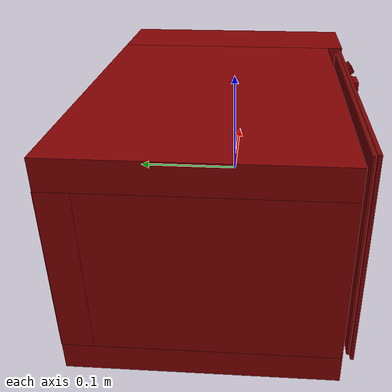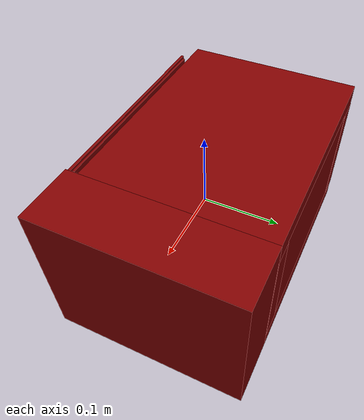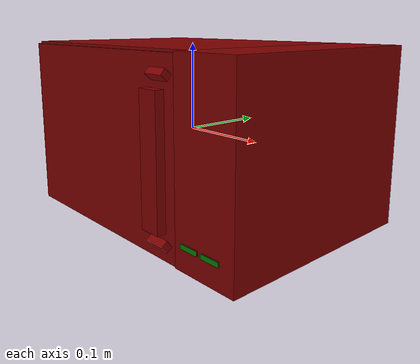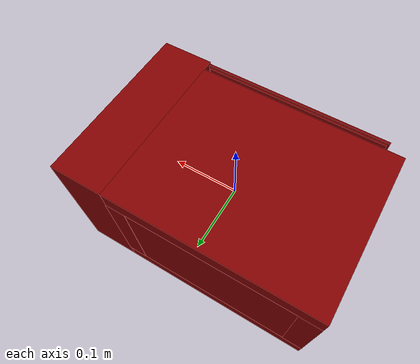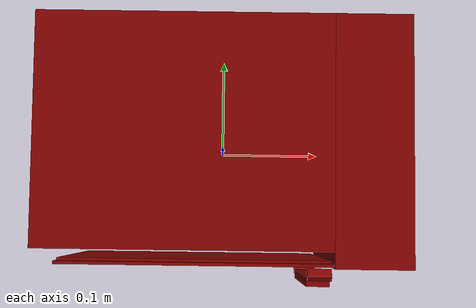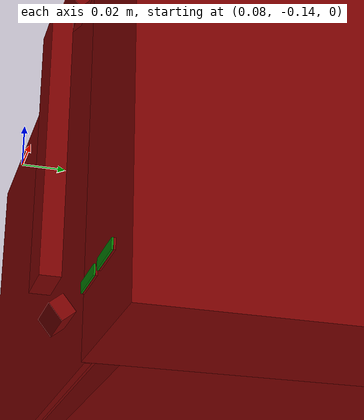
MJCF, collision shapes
<mujoco model="model">
  <compiler angle="radian"/>
  <asset>
    <mesh file="visuals/door.obj" name="door_vis"/>
    <mesh file="visuals/door_Clear.obj" name="door_Clear_vis"/>
    <mesh file="visuals/Body001.obj" name="Body001_vis"/>
    <mesh file="visuals/Button001.obj" name="Button001_vis"/>
    <mesh file="visuals/Button002.obj" name="Button002_vis"/>
    <mesh file="visuals/Disc001.obj" name="Disc001_vis"/>
    <texture file="visuals/T_BC001.png" name="Body001_material" type="2d"/>
    <material name="Body001_material" rgba="1 1 1 1.0" texture="Body001_material" shininess="0.141421377658844" specular="0.3103448502657381"/>
    <texture file="visuals/T_BC001.png" name="door_material" type="2d"/>
    <material name="door_material" rgba="1 1 1 1.0" texture="door_material" shininess="0.141421377658844" specular="0.3103448502657381"/>
    <texture file="visuals/T_BC001.png" name="door_Clear_material" type="2d"/>
    <material name="door_Clear_material" rgba="1 1 1 0.6971428394317627" texture="door_Clear_material" shininess="0.141421377658844" specular="0.3103448502657381"/>
    <texture file="visuals/T_BC001.png" name="Button001_material" type="2d"/>
    <material name="Button001_material" rgba="1 1 1 1.0" texture="Button001_material" shininess="0.141421377658844" specular="0.3103448502657381"/>
    <texture file="visuals/T_BC001.png" name="Button002_material" type="2d"/>
    <material name="Button002_material" rgba="1 1 1 1.0" texture="Button002_material" shininess="0.141421377658844" specular="0.3103448502657381"/>
    <texture file="visuals/T_BC001.png" name="Disc001_material" type="2d"/>
    <material name="Disc001_material" rgba="1 1 1 1.0" texture="Disc001_material" shininess="0.141421377658844" specular="0.3103448502657381"/>
  </asset>
  <default>
    <default class="visual">
      <geom conaffinity="0" contype="0" group="1" type="mesh"/>
    </default>
    <default class="collision">
      <geom group="0" rgba="0.5 0 0 0.5"/>
    </default>
    <default class="spawn">
      <geom group="0" rgba="1 1 1 0.5" contype="0" conaffinity="0"/>
      <site group="0" rgba="1 1 1 0.5"/>
    </default>
    <default class="region">
      <geom group="1" conaffinity="0" contype="0" rgba="0 1 0 0"/>
    </default>
  </default>
  <worldbody>
    <body>
      <body name="object">
        <geom class="collision" type="box" pos="-0.037042 0.002716 -0.062936" size="0.0876477062702179 0.0876477062702179 0.0024081584997475147" quat="1.0 0.0 0.0 0.0" name="tray" rgba="0 1 0 0.5"/>
        <geom class="collision" type="box" pos="0.158836 -0.118766 -0.072661" size="0.011024856939911842 0.00039472829666920006 0.002422338118776679" quat="1.0 0.0 0.0 0.0" name="start_button" rgba="0.0 0.5 0 0.5"/>
        <geom class="collision" type="box" pos="0.131542 -0.118766 -0.072661" size="0.011002318933606148 0.00039472829666920006 0.002422338118776679" quat="1.0 0.0 0.0 0.0" name="stop_button" rgba="0.0 0.5 0 0.5"/>
        <geom mesh="Body001_vis" type="mesh" solimp="0.998 0.998 0.001" solref="0.001 1" density="100" friction="0.95 0.3 0.1" class="visual" material="Body001_material"/>
        <geom class="collision" type="box" pos="0.094624 0.017139 -0.000690" size="0.014875564724206924 0.11611251533031464 0.07368079572916031" quat="1.0 0.0 0.0 0.0"/>
        <geom class="collision" type="box" pos="-0.037826 0.016945 -0.086299" size="0.14693722128868103 0.11591878533363342 0.01365869864821434" quat="1.0 0.0 0.0 0.0"/>
        <geom class="collision" type="box" pos="-0.037826 0.016945 0.086276" size="0.14693722128868103 0.11591878533363342 0.01368152815848589" quat="1.0 0.0 0.0 0.0"/>
        <geom class="collision" type="box" pos="-0.037800 0.119163 -0.000690" size="0.14704078435897827 0.01370097417384386 0.07368079572916031" quat="1.0 0.0 0.0 0.0"/>
        <geom class="collision" type="box" pos="-0.169927 0.017139 -0.000690" size="0.01483687199652195 0.11611251533031464 0.07368079572916031" quat="1.0 0.0 0.0 0.0"/>
        <geom class="collision" type="box" pos="0.146635 0.008819 0.000000" size="0.03812778368592262 0.1240454614162445 0.09995769709348679" quat="1.0 0.0 0.0 0.0"/>
        <body name="door">
          <joint axis="0.0 0.0 1.0" pos="-0.169349 -0.098947 0.000000" limited="true" name="microjoint" range="-1.5707963267948966 0.0" type="hinge" damping="1" frictionloss="1" armature=".01" stiffness="0.05"/>
          <geom mesh="door_vis" type="mesh" solimp="0.998 0.998 0.001" solref="0.001 1" density="100" friction="0.95 0.3 0.1" class="visual" material="door_material"/>
          <geom class="collision" type="box" pos="-0.026764 -0.108745 -0.000905" size="0.13121455907821655 0.0013046571984887123 0.09683655947446823" quat="1.0 0.0 0.0 0.0"/>
          <geom class="collision" type="box" pos="0.095681 -0.121953 0.079636" size="0.011772533878684044 0.004761143121868372 0.0037536039017140865" quat="0.9371328949928284 -0.3489726781845093 -0.0 0.0"/>
          <geom class="collision" type="box" pos="0.095681 -0.129409 0.001906" size="0.011772533878684044 0.004812950734049082 0.06571072340011597" quat="1.0 0.0 0.0 0.0" name="door_handle"/>
          <geom class="collision" type="box" pos="0.095681 -0.123633 -0.076897" size="0.011772533878684044 0.004761143121868372 0.0037536039017140865" quat="0.9010329842567444 -0.43375056982040405 -0.0 0.0"/>
          <body name="door_Clear">
            <geom mesh="door_Clear_vis" type="mesh" solimp="0.998 0.998 0.001" solref="0.001 1" density="100" friction="0.95 0.3 0.1" class="visual" material="door_Clear_material"/>
            <geom class="collision" type="box" pos="-0.026764 -0.112056 -0.000905" size="0.13451582193374634 0.0015686886617913842 0.09908086061477661" quat="1.0 0.0 0.0 0.0"/>
          </body>
        </body>
        <body name="Button001">
          <joint axis="0.0 1.0 0.0" pos="0.131683 -0.115826 -0.072730" limited="true" name="Button001_joint" range="0.0 0.001" type="slide" damping="1" frictionloss="1" armature=".01" stiffness="0.05"/>
          <geom mesh="Button001_vis" type="mesh" solimp="0.998 0.998 0.001" solref="0.001 1" density="100" friction="0.95 0.3 0.1" class="visual" material="Button001_material"/>
          <geom class="collision" type="box" pos="0.131542 -0.117847 -0.072661" size="0.011002318933606148 0.0004079305799677968 0.002422338118776679" quat="1.0 0.0 0.0 0.0"/>
        </body>
        <body name="Button002">
          <joint axis="0.0 1.0 0.0" pos="0.159052 -0.115826 -0.072730" limited="true" name="Button002_joint" range="0.0 0.001" type="slide" damping="1" frictionloss="1" armature=".01" stiffness="0.05"/>
          <geom mesh="Button002_vis" type="mesh" solimp="0.998 0.998 0.001" solref="0.001 1" density="100" friction="0.95 0.3 0.1" class="visual" material="Button002_material"/>
          <geom class="collision" type="box" pos="0.158836 -0.117847 -0.072661" size="0.011024856939911842 0.0004079305799677968 0.002422338118776679" quat="1.0 0.0 0.0 0.0"/>
        </body>
        <body name="Disc001">
          <joint axis="0.0 0.0 1.0" pos="-0.037042 0.002716 -0.066029" limited="false" name="Disc001_joint" range="0 360" type="hinge" damping="1" frictionloss="1" armature=".01" stiffness="0.05"/>
          <geom mesh="Disc001_vis" type="mesh" solimp="0.998 0.998 0.001" solref="0.001 1" density="100" friction="0.95 0.3 0.1" class="visual" material="Disc001_material"/>
          <geom class="collision" type="cylinder" pos="-0.037042 0.002716 -0.068787" size="0.0876477062702179 0.0024751557502895594" quat="1.0 0.0 0.0 0.0"/>
        </body>
        <geom class="region" name="reg_main" type="box" pos="0.0 0.008829000000000004 0.0" size="0.184763 0.124035 0.099958"/>
        <geom class="region" name="reg_int" type="box" pos="-0.038025 0.0033865000000000006 -0.00011749999999999955" size="0.11787500000000001 0.0972435 0.06993250000000001"/>
      </body>
    </body>
  </worldbody>
  <actuator>
    <motor name="microjoint_actuator" joint="microjoint" gear="10"/>
    <motor name="Button001_joint_actuator" joint="Button001_joint" gear="0.5"/>
    <motor name="Button002_joint_actuator" joint="Button002_joint" gear="0.5"/>
    <motor name="Disc001_joint_actuator" joint="Disc001_joint" gear="0.5"/>
  </actuator>
</mujoco>
